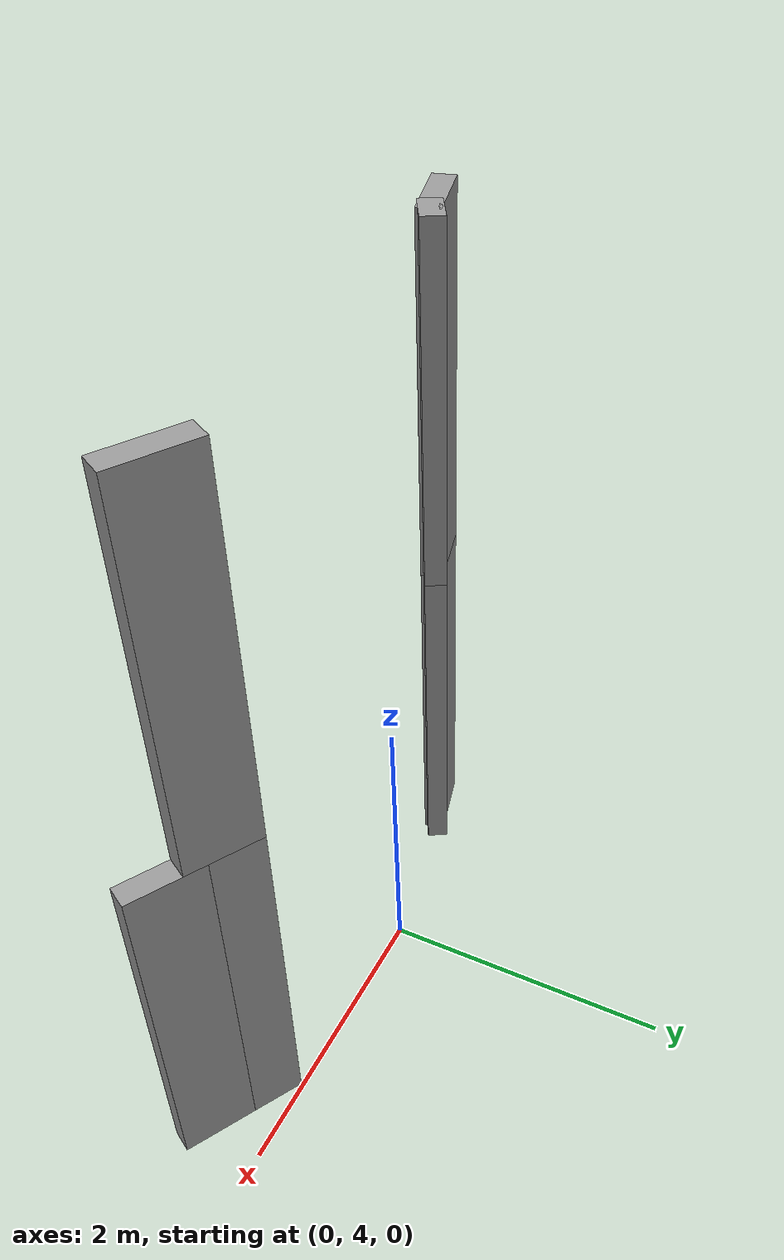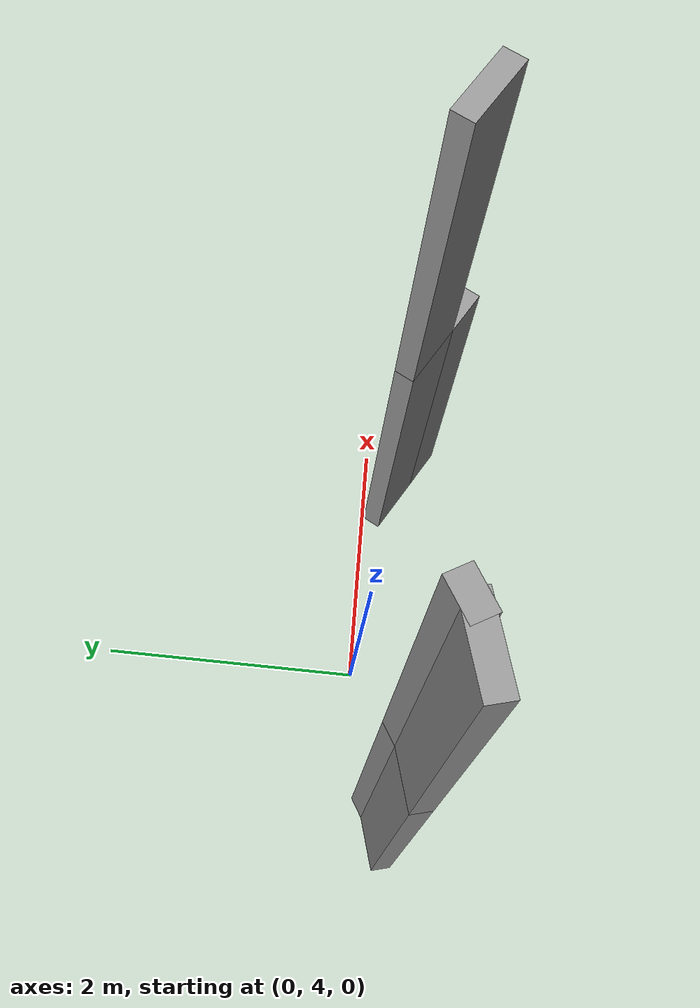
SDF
<sdf version="1.7">
 <model name="EnvDC01">
  <link name="Wall_152">
   <pose>1.91531 3.61888 0 0 -0 2.61799</pose>
   <visual name="Wall_152_Visual">
    <pose>0 0 1.25 0 -0 0</pose>
    <geometry><box><size>0.5 0.15 2.5</size></box></geometry>
    <material>
     <script><uri>file://media/materials/scripts/gazebo.material</uri><name>Gazebo/Grey</name></script>
     <ambient>1 1 1 1</ambient>
     <shader type="pixel"/>
    </material>
    <meta><layer>0</layer></meta>
   </visual>
   <collision name="Wall_152_Collision">
    <pose>0 0 1.25 0 -0 0</pose>
    <geometry><box><size>0.5 0.15 2.5</size></box></geometry>
    <surface>
     <friction>
      <ode><mu>1</mu><mu2>1</mu2><fdir1>0 0 0</fdir1><slip1>0</slip1><slip2>0</slip2></ode>
      <torsional>
       <coefficient>1</coefficient>
       <patch_radius>0</patch_radius>
       <surface_radius>0</surface_radius>
       <use_patch_radius>1</use_patch_radius>
       <ode><slip>0</slip></ode>
      </torsional>
     </friction>
     <bounce><restitution_coefficient>0</restitution_coefficient><threshold>1e+06</threshold></bounce>
     <contact>
      <collide_without_contact>0</collide_without_contact>
      <collide_without_contact_bitmask>1</collide_without_contact_bitmask>
      <collide_bitmask>1</collide_bitmask>
      <ode>
       <soft_cfm>0</soft_cfm>
       <soft_erp>0.2</soft_erp>
       <kp>1e+13</kp>
       <kd>1</kd>
       <max_vel>0.01</max_vel>
       <min_depth>0</min_depth>
      </ode>
      <bullet>
       <split_impulse>1</split_impulse>
       <split_impulse_penetration_threshold>-0.01</split_impulse_penetration_threshold>
       <soft_cfm>0</soft_cfm>
       <soft_erp>0.2</soft_erp>
       <kp>1e+13</kp>
       <kd>1</kd>
      </bullet>
     </contact>
    </surface>
   </collision>
  </link>
  <link name="Wall_153">
   <pose>1.6122 3.79388 0 0 -0 2.61799</pose>
   <visual name="Wall_153_Visual">
    <pose>0 0 1.25 0 -0 0</pose>
    <geometry><box><size>0.5 0.15 2.5</size></box></geometry>
    <material>
     <script><uri>file://media/materials/scripts/gazebo.material</uri><name>Gazebo/Grey</name></script>
     <ambient>1 1 1 1</ambient>
     <shader type="pixel"/>
    </material>
    <meta><layer>0</layer></meta>
   </visual>
   <collision name="Wall_153_Collision">
    <pose>0 0 1.25 0 -0 0</pose>
    <geometry><box><size>0.5 0.15 2.5</size></box></geometry>
    <surface>
     <friction>
      <ode><mu>1</mu><mu2>1</mu2><fdir1>0 0 0</fdir1><slip1>0</slip1><slip2>0</slip2></ode>
      <torsional>
       <coefficient>1</coefficient>
       <patch_radius>0</patch_radius>
       <surface_radius>0</surface_radius>
       <use_patch_radius>1</use_patch_radius>
       <ode><slip>0</slip></ode>
      </torsional>
     </friction>
     <bounce><restitution_coefficient>0</restitution_coefficient><threshold>1e+06</threshold></bounce>
     <contact>
      <collide_without_contact>0</collide_without_contact>
      <collide_without_contact_bitmask>1</collide_without_contact_bitmask>
      <collide_bitmask>1</collide_bitmask>
      <ode>
       <soft_cfm>0</soft_cfm>
       <soft_erp>0.2</soft_erp>
       <kp>1e+13</kp>
       <kd>1</kd>
       <max_vel>0.01</max_vel>
       <min_depth>0</min_depth>
      </ode>
      <bullet>
       <split_impulse>1</split_impulse>
       <split_impulse_penetration_threshold>-0.01</split_impulse_penetration_threshold>
       <soft_cfm>0</soft_cfm>
       <soft_erp>0.2</soft_erp>
       <kp>1e+13</kp>
       <kd>1</kd>
      </bullet>
     </contact>
    </surface>
   </collision>
  </link>
  <link name="Wall_159">
   <pose>-1.08326 3.78389 0 0 0 -2.61799</pose>
   <visual name="Wall_159_Visual">
    <pose>0 0 1.25 0 -0 0</pose>
    <geometry><box><size>0.25 0.15 2.5</size></box></geometry>
    <material>
     <script><uri>file://media/materials/scripts/gazebo.material</uri><name>Gazebo/Grey</name></script>
     <ambient>1 1 1 1</ambient>
     <shader type="pixel"/>
    </material>
    <meta><layer>0</layer></meta>
   </visual>
   <collision name="Wall_159_Collision">
    <pose>0 0 1.25 0 -0 0</pose>
    <geometry><box><size>0.25 0.15 2.5</size></box></geometry>
    <surface>
     <friction>
      <ode><mu>1</mu><mu2>1</mu2><fdir1>0 0 0</fdir1><slip1>0</slip1><slip2>0</slip2></ode>
      <torsional>
       <coefficient>1</coefficient>
       <patch_radius>0</patch_radius>
       <surface_radius>0</surface_radius>
       <use_patch_radius>1</use_patch_radius>
       <ode><slip>0</slip></ode>
      </torsional>
     </friction>
     <bounce><restitution_coefficient>0</restitution_coefficient><threshold>1e+06</threshold></bounce>
     <contact>
      <collide_without_contact>0</collide_without_contact>
      <collide_without_contact_bitmask>1</collide_without_contact_bitmask>
      <collide_bitmask>1</collide_bitmask>
      <ode>
       <soft_cfm>0</soft_cfm>
       <soft_erp>0.2</soft_erp>
       <kp>1e+13</kp>
       <kd>1</kd>
       <max_vel>0.01</max_vel>
       <min_depth>0</min_depth>
      </ode>
      <bullet>
       <split_impulse>1</split_impulse>
       <split_impulse_penetration_threshold>-0.01</split_impulse_penetration_threshold>
       <soft_cfm>0</soft_cfm>
       <soft_erp>0.2</soft_erp>
       <kp>1e+13</kp>
       <kd>1</kd>
      </bullet>
     </contact>
    </surface>
   </collision>
  </link>
  <link name="Wall_160">
   <pose>-1.29559 3.7136 0 0 0 -2.87979</pose>
   <visual name="Wall_160_Visual">
    <pose>0 0 1.25 0 -0 0</pose>
    <geometry><box><size>0.5 0.15 2.5</size></box></geometry>
    <material>
     <script><uri>file://media/materials/scripts/gazebo.material</uri><name>Gazebo/Grey</name></script>
     <ambient>1 1 1 1</ambient>
     <shader type="pixel"/>
    </material>
    <meta><layer>0</layer></meta>
   </visual>
   <collision name="Wall_160_Collision">
    <pose>0 0 1.25 0 -0 0</pose>
    <geometry><box><size>0.5 0.15 2.5</size></box></geometry>
    <surface>
     <friction>
      <ode><mu>1</mu><mu2>1</mu2><fdir1>0 0 0</fdir1><slip1>0</slip1><slip2>0</slip2></ode>
      <torsional>
       <coefficient>1</coefficient>
       <patch_radius>0</patch_radius>
       <surface_radius>0</surface_radius>
       <use_patch_radius>1</use_patch_radius>
       <ode><slip>0</slip></ode>
      </torsional>
     </friction>
     <bounce><restitution_coefficient>0</restitution_coefficient><threshold>1e+06</threshold></bounce>
     <contact>
      <collide_without_contact>0</collide_without_contact>
      <collide_without_contact_bitmask>1</collide_without_contact_bitmask>
      <collide_bitmask>1</collide_bitmask>
      <ode>
       <soft_cfm>0</soft_cfm>
       <soft_erp>0.2</soft_erp>
       <kp>1e+13</kp>
       <kd>1</kd>
       <max_vel>0.01</max_vel>
       <min_depth>0</min_depth>
      </ode>
      <bullet>
       <split_impulse>1</split_impulse>
       <split_impulse_penetration_threshold>-0.01</split_impulse_penetration_threshold>
       <soft_cfm>0</soft_cfm>
       <soft_erp>0.2</soft_erp>
       <kp>1e+13</kp>
       <kd>1</kd>
      </bullet>
     </contact>
    </surface>
   </collision>
  </link>
  <link name="Wall_342">
   <pose>1.6122 3.79388 2.5 0 -0 2.61799</pose>
   <visual name="Wall_342_Visual">
    <pose>0 0 1.25 0 -0 0</pose>
    <geometry><box><size>0.5 0.15 2.5</size></box></geometry>
    <material>
     <script><uri>file://media/materials/scripts/gazebo.material</uri><name>Gazebo/Grey</name></script>
     <ambient>1 1 1 1</ambient>
     <shader type="pixel"/>
    </material>
    <meta><layer>1</layer></meta>
   </visual>
   <collision name="Wall_342_Collision">
    <pose>0 0 1.25 0 -0 0</pose>
    <geometry><box><size>0.5 0.15 2.5</size></box></geometry>
    <surface>
     <friction>
      <ode><mu>1</mu><mu2>1</mu2><fdir1>0 0 0</fdir1><slip1>0</slip1><slip2>0</slip2></ode>
      <torsional>
       <coefficient>1</coefficient>
       <patch_radius>0</patch_radius>
       <surface_radius>0</surface_radius>
       <use_patch_radius>1</use_patch_radius>
       <ode><slip>0</slip></ode>
      </torsional>
     </friction>
     <bounce><restitution_coefficient>0</restitution_coefficient><threshold>1e+06</threshold></bounce>
     <contact>
      <collide_without_contact>0</collide_without_contact>
      <collide_without_contact_bitmask>1</collide_without_contact_bitmask>
      <collide_bitmask>1</collide_bitmask>
      <ode>
       <soft_cfm>0</soft_cfm>
       <soft_erp>0.2</soft_erp>
       <kp>1e+13</kp>
       <kd>1</kd>
       <max_vel>0.01</max_vel>
       <min_depth>0</min_depth>
      </ode>
      <bullet>
       <split_impulse>1</split_impulse>
       <split_impulse_penetration_threshold>-0.01</split_impulse_penetration_threshold>
       <soft_cfm>0</soft_cfm>
       <soft_erp>0.2</soft_erp>
       <kp>1e+13</kp>
       <kd>1</kd>
      </bullet>
     </contact>
    </surface>
   </collision>
  </link>
  <link name="Wall_348">
   <pose>-1.08326 3.78389 2.5 0 0 -2.61799</pose>
   <visual name="Wall_348_Visual">
    <pose>0 0 1.25 0 -0 0</pose>
    <geometry><box><size>0.25 0.15 2.5</size></box></geometry>
    <material>
     <script><uri>file://media/materials/scripts/gazebo.material</uri><name>Gazebo/Grey</name></script>
     <ambient>1 1 1 1</ambient>
     <shader type="pixel"/>
    </material>
    <meta><layer>1</layer></meta>
   </visual>
   <collision name="Wall_348_Collision">
    <pose>0 0 1.25 0 -0 0</pose>
    <geometry><box><size>0.25 0.15 2.5</size></box></geometry>
    <surface>
     <friction>
      <ode><mu>1</mu><mu2>1</mu2><fdir1>0 0 0</fdir1><slip1>0</slip1><slip2>0</slip2></ode>
      <torsional>
       <coefficient>1</coefficient>
       <patch_radius>0</patch_radius>
       <surface_radius>0</surface_radius>
       <use_patch_radius>1</use_patch_radius>
       <ode><slip>0</slip></ode>
      </torsional>
     </friction>
     <bounce><restitution_coefficient>0</restitution_coefficient><threshold>1e+06</threshold></bounce>
     <contact>
      <collide_without_contact>0</collide_without_contact>
      <collide_without_contact_bitmask>1</collide_without_contact_bitmask>
      <collide_bitmask>1</collide_bitmask>
      <ode>
       <soft_cfm>0</soft_cfm>
       <soft_erp>0.2</soft_erp>
       <kp>1e+13</kp>
       <kd>1</kd>
       <max_vel>0.01</max_vel>
       <min_depth>0</min_depth>
      </ode>
      <bullet>
       <split_impulse>1</split_impulse>
       <split_impulse_penetration_threshold>-0.01</split_impulse_penetration_threshold>
       <soft_cfm>0</soft_cfm>
       <soft_erp>0.2</soft_erp>
       <kp>1e+13</kp>
       <kd>1</kd>
      </bullet>
     </contact>
    </surface>
   </collision>
  </link>
  <link name="Wall_349">
   <pose>-1.29559 3.7136 2.5 0 0 -2.87979</pose>
   <visual name="Wall_349_Visual">
    <pose>0 0 1.25 0 -0 0</pose>
    <geometry><box><size>0.5 0.15 2.5</size></box></geometry>
    <material>
     <script><uri>file://media/materials/scripts/gazebo.material</uri><name>Gazebo/Grey</name></script>
     <ambient>1 1 1 1</ambient>
     <shader type="pixel"/>
    </material>
    <meta><layer>1</layer></meta>
   </visual>
   <collision name="Wall_349_Collision">
    <pose>0 0 1.25 0 -0 0</pose>
    <geometry><box><size>0.5 0.15 2.5</size></box></geometry>
    <surface>
     <friction>
      <ode><mu>1</mu><mu2>1</mu2><fdir1>0 0 0</fdir1><slip1>0</slip1><slip2>0</slip2></ode>
      <torsional>
       <coefficient>1</coefficient>
       <patch_radius>0</patch_radius>
       <surface_radius>0</surface_radius>
       <use_patch_radius>1</use_patch_radius>
       <ode><slip>0</slip></ode>
      </torsional>
     </friction>
     <bounce><restitution_coefficient>0</restitution_coefficient><threshold>1e+06</threshold></bounce>
     <contact>
      <collide_without_contact>0</collide_without_contact>
      <collide_without_contact_bitmask>1</collide_without_contact_bitmask>
      <collide_bitmask>1</collide_bitmask>
      <ode>
       <soft_cfm>0</soft_cfm>
       <soft_erp>0.2</soft_erp>
       <kp>1e+13</kp>
       <kd>1</kd>
       <max_vel>0.01</max_vel>
       <min_depth>0</min_depth>
      </ode>
      <bullet>
       <split_impulse>1</split_impulse>
       <split_impulse_penetration_threshold>-0.01</split_impulse_penetration_threshold>
       <soft_cfm>0</soft_cfm>
       <soft_erp>0.2</soft_erp>
       <kp>1e+13</kp>
       <kd>1</kd>
      </bullet>
     </contact>
    </surface>
   </collision>
  </link>
  <static>1</static>
 </model>
</sdf>
